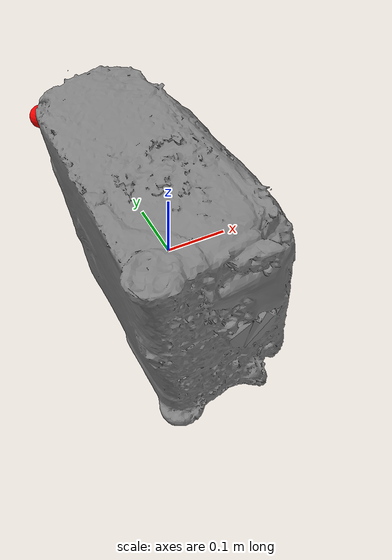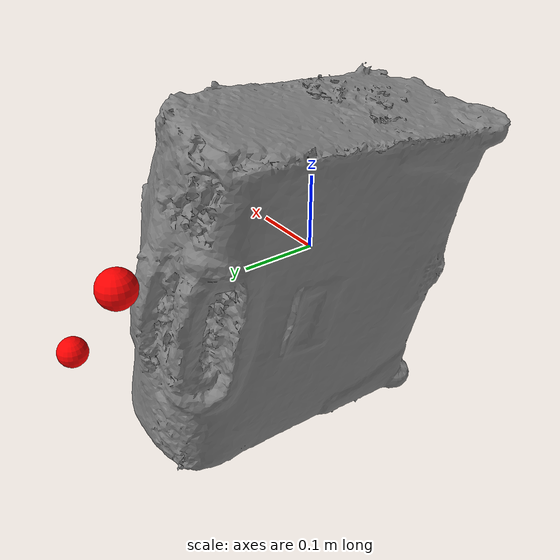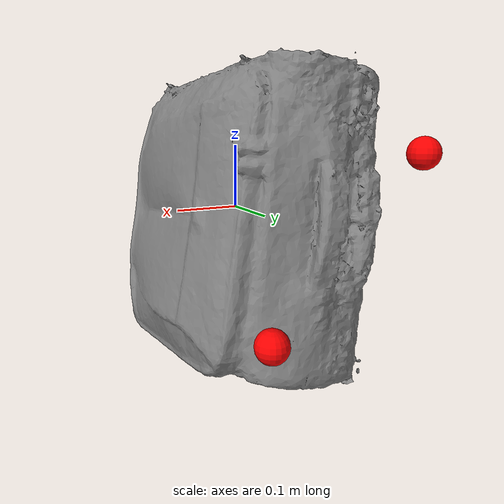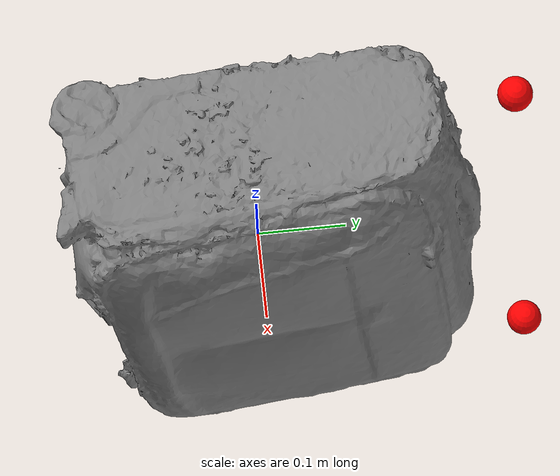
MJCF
<?xml version="1.0"?>
<mujoco model="suitcase">
  <!-- Assets -->
  <asset>
    <mesh name="suitcase_mesh" file="/home/elijah/Documents/projects/hdmi/active-adaptation/active_adaptation/assets_mjcf/objects/suitcase/suitcase.obj"/>
  </asset>

  <!-- World body -->
  <worldbody>
    <body name="suitcase_body">
      <freejoint name="suitcase_root"/>
      <inertial mass="2.0" pos="0 0 0" diaginertia="0.1 0.1 0.1"/>

      <site name="suitcase_root" pos="0 0 0" size="0.02" rgba="1 0 0 1"/>
      <site name="left_hand_contact" pos="0.1 0.3 -0.1" size="0.02" rgba="1 0 0 1"/>
      <site name="right_hand_contact" pos="-0.1 0.3 0.1" size="0.02" rgba="1 0 0 1"/>
      <!-- Visual geometry -->
      <geom name="suitcase_visual"
            type="mesh"
            mesh="suitcase_mesh"
            contype="0"
            conaffinity="0"/>

      <!-- Collision geometry -->
      <geom name="suitcase_collision"
            type="mesh"
            mesh="suitcase_mesh"
            rgba="0.4 0.3 0.2 0.5"/>
    </body>
  </worldbody>

</mujoco>
